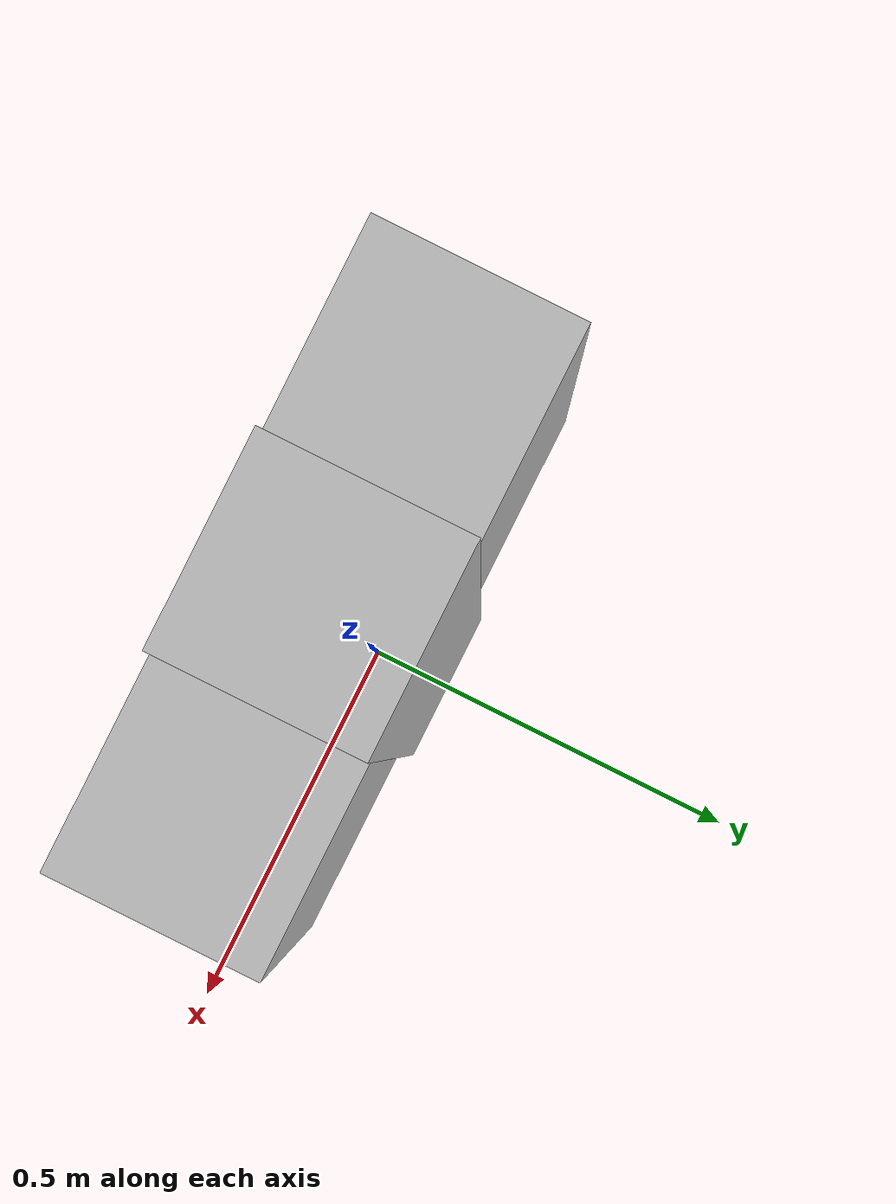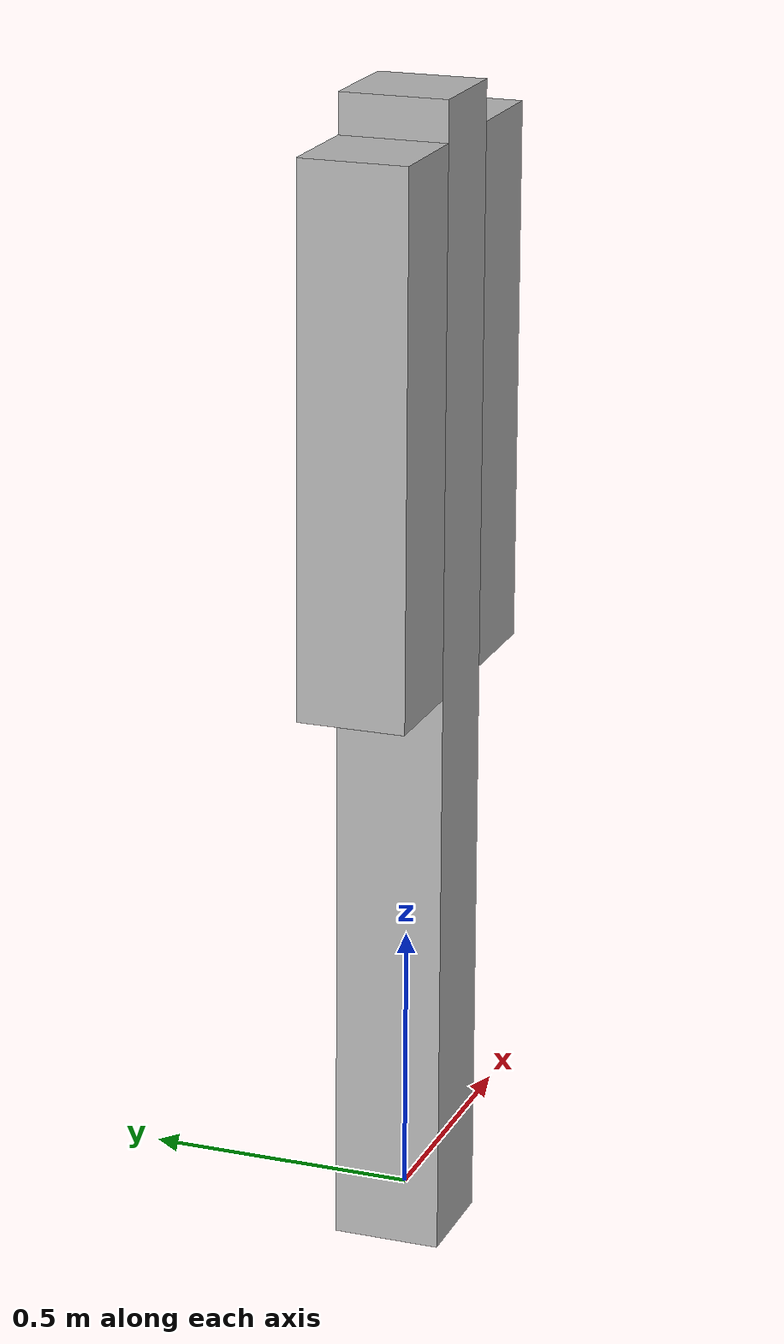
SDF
<?xml version="1.0"?>

<sdf version="1.7">

    <model name="double_pendulum">
        <joint name="fixed_base" type="fixed">
            <parent>world</parent>
            <child>base_link</child>
            <axis>
                <xyz>1 0 0</xyz>
                <limit>
                    <lower>-5</lower>
                    <upper>5</upper>
                    <effort>100</effort>
                    <velocity>100</velocity>
                </limit>
                <dynamics>
                    <damping>0.0</damping>
                    <spring_reference>0</spring_reference>
                    <spring_stiffness>0.0</spring_stiffness>
                </dynamics>
            </axis>
        </joint>
        <link name='base_link'>
            <inertial>
                <pose>0 0 0 0 0 0</pose>
                <mass>100</mass>
                <inertia>
                    <ixx>1</ixx>
                    <ixy>0</ixy>
                    <ixz>0</ixz>
                    <iyy>1</iyy>
                    <iyz>0</iyz>
                    <izz>1</izz>
                </inertia>
            </inertial>
            <collision name='base_link_collision'>
                <pose>0 0 1 0 0 0</pose>
                <geometry>
                    <box>
                        <size>0.20 0.20 2.15</size>
                    </box>
                </geometry>
            </collision>
            <visual name='base_link_visual'>
                <pose>0 0 1 0 0 0</pose>
                <geometry>
                    <box>
                        <size>0.20 0.20 2.15</size>
                    </box>
                </geometry>
            </visual>
        </link>
        <joint name='right_joint' type='revolute'>
            <pose relative_to='base_link'>0.20 0 2 -3.1415 0 0</pose>
            <parent>base_link</parent>
            <child>right_link</child>
            <axis>
                <xyz>1 0 0</xyz>
                <limit>
                    <lower>-100</lower>
                    <upper>100</upper>
                    <effort>100</effort>
                    <velocity>100</velocity>
                </limit>
                <dynamics>
                    <damping>1.0</damping>
                    <spring_reference>0</spring_reference>
                    <spring_stiffness>0.0</spring_stiffness>
                </dynamics>
            </axis>
        </joint>
        <link name='right_link'>
            <pose relative_to='right_joint'>0 0 0 0 0 0</pose>
            <self_collide>0</self_collide>
            <inertial>
                <pose>0 0 0.5 0 0 0</pose>
                <mass>1</mass>
                <inertia>
                    <ixx>1.0</ixx>
                    <ixy>0</ixy>
                    <ixz>0</ixz>
                    <iyy>1.0</iyy>
                    <iyz>0</iyz>
                    <izz>1.0</izz>
                </inertia>
            </inertial>
            <visual name='right_link_visual'>
                <pose>0 0 0.5 0 0 0</pose>
                <geometry>
                    <box>
                        <size>0.20 0.20 1.0</size>
                    </box>
                </geometry>
            </visual>
        </link>

        <joint name='left_joint' type='revolute'>
            <pose relative_to='base_link'>-0.20 0 2 -3.1415 0 0</pose>
            <parent>base_link</parent>
            <child>left_link</child>
            <axis>
                <xyz>1 0 0</xyz>
                <limit>
                    <lower>-100</lower>
                    <upper>100</upper>
                    <effort>100</effort>
                    <velocity>100</velocity>
                </limit>
                <dynamics>
                    <damping>1.0</damping>
                    <spring_reference>0</spring_reference>
                    <spring_stiffness>0.0</spring_stiffness>
                </dynamics>
            </axis>
        </joint>
        <link name='left_link'>
            <pose relative_to='left_joint'>0 0 0 0 0 0</pose>
            <self_collide>0</self_collide>
            <inertial>
                <pose>0.0 0 0.5 0 0 0</pose>
                <mass>1</mass>
                <inertia>
                    <ixx>1.0</ixx>
                    <ixy>0</ixy>
                    <ixz>0</ixz>
                    <iyy>1.0</iyy>
                    <iyz>0</iyz>
                    <izz>1.0</izz>
                </inertia>
            </inertial>
            <visual name='left_link_visual'>
                <pose>0.0 0 0.5 0 0 0</pose>
                <geometry>
                    <box>
                        <size>0.20 0.20 1.0</size>
                    </box>
                </geometry>
            </visual>
        </link>
        <frame name="base_link_middle_right_frame" attached_to="base_link">
            <pose relative_to="base_link">0.20 0 1 0 0 0</pose>
        </frame>
        <frame name="base_link_middle_left_frame" attached_to="base_link">
            <pose relative_to="base_link">-0.20 0 1 0 0 0</pose>
        </frame>
        <frame name="right_link_extremity_frame" attached_to="right_link">
            <pose relative_to="right_link"> -0.2 0 1 3.14 0 0</pose>
        </frame>
        <frame name="left_link_extremity_frame" attached_to="left_link">
            <pose relative_to="left_link"> 0.2 0 1 3.14 0 0</pose>
        </frame>
    </model>

</sdf>
